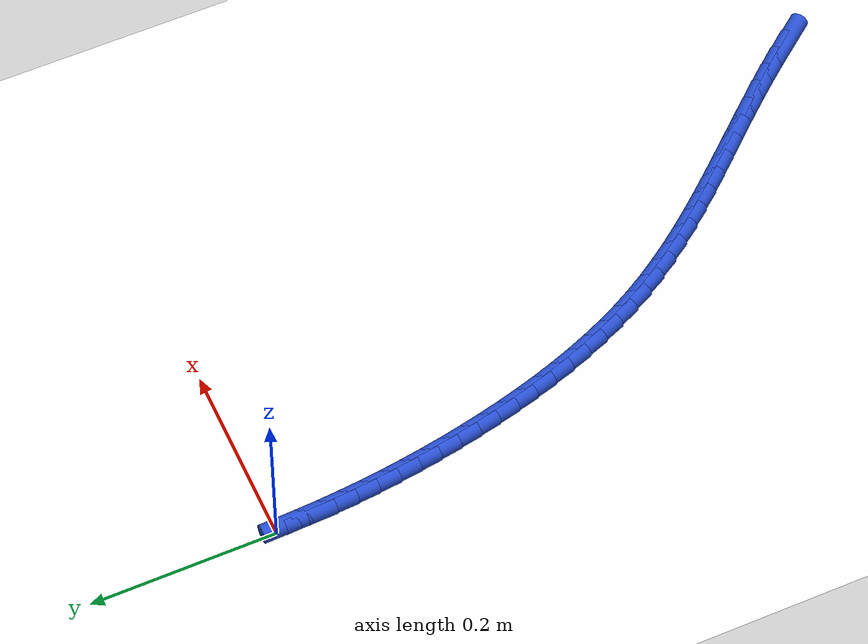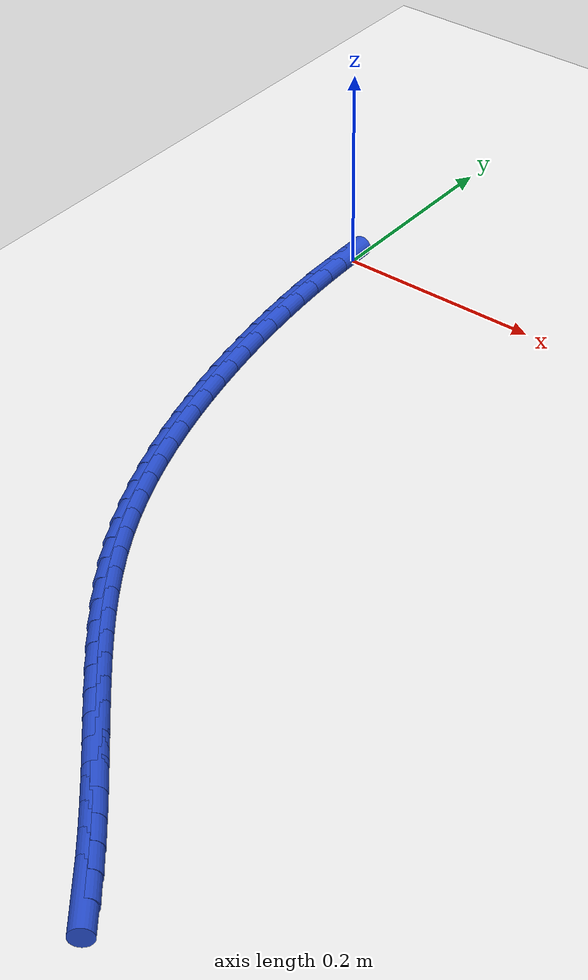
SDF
<sdf version="1.6">
 <world name="default">
  <model name="ground_plane">
   <static>1</static>
   <link name="link">
    <collision name="collision">
     <geometry><plane><normal>0 0 1</normal><size>100 100</size></plane></geometry>
     <surface><friction><ode><mu>100</mu><mu2>50</mu2></ode></friction></surface>
    </collision>
    <visual name="visual">
     <cast_shadows>0</cast_shadows>
     <geometry><plane><normal>0 0 1</normal><size>100 100</size></plane></geometry>
     <material>
      <script><uri>file://media/materials/scripts/gazebo.material</uri><name>Gazebo/WhiteGlow</name></script>
     </material>
    </visual>
   </link>
  </model>
  <model name="line">
   <link name="link_236">
    <pose>0.32914230201684863 -0.7265208255731714 0.01 0 1.57 -0.9060577357966905</pose>
    <collision name="collision">
     <geometry><cylinder><radius>0.01</radius><length>0.08</length></cylinder></geometry>
    </collision>
    <visual name="visual">
     <material>
      <script><name>Gazebo/Blue</name><uri>file://media/materials/scripts/gazebo.material</uri></script>
     </material>
     <geometry><cylinder><radius>0.01</radius><length>0.08</length></cylinder></geometry>
    </visual>
   </link>
   <link name="link_237">
    <pose>0.3139090775551079 -0.7070838949903073 0.01 0 1.57 -0.884286675162863</pose>
    <collision name="collision">
     <geometry><cylinder><radius>0.01</radius><length>0.08</length></cylinder></geometry>
    </collision>
    <visual name="visual">
     <material>
      <script><name>Gazebo/Blue</name><uri>file://media/materials/scripts/gazebo.material</uri></script>
     </material>
     <geometry><cylinder><radius>0.01</radius><length>0.08</length></cylinder></geometry>
    </visual>
   </link>
   <link name="link_238">
    <pose>0.2983105336051203 -0.6880493265683436 0.01 0 1.57 -0.8671164720490864</pose>
    <collision name="collision">
     <geometry><cylinder><radius>0.01</radius><length>0.08</length></cylinder></geometry>
    </collision>
    <visual name="visual">
     <material>
      <script><name>Gazebo/Blue</name><uri>file://media/materials/scripts/gazebo.material</uri></script>
     </material>
     <geometry><cylinder><radius>0.01</radius><length>0.08</length></cylinder></geometry>
    </visual>
   </link>
   <link name="link_239">
    <pose>0.2824369295762277 -0.6693436558121986 0.01 0 1.57 -0.8546157587797487</pose>
    <collision name="collision">
     <geometry><cylinder><radius>0.01</radius><length>0.08</length></cylinder></geometry>
    </collision>
    <visual name="visual">
     <material>
      <script><name>Gazebo/Blue</name><uri>file://media/materials/scripts/gazebo.material</uri></script>
     </material>
     <geometry><cylinder><radius>0.01</radius><length>0.08</length></cylinder></geometry>
    </visual>
   </link>
   <link name="link_240">
    <pose>0.2663787942982172 -0.6508930891737332 0.01 0 1.57 -0.8468266680399729</pose>
    <collision name="collision">
     <geometry><cylinder><radius>0.01</radius><length>0.08</length></cylinder></geometry>
    </collision>
    <visual name="visual">
     <material>
      <script><name>Gazebo/Blue</name><uri>file://media/materials/scripts/gazebo.material</uri></script>
     </material>
     <geometry><cylinder><radius>0.01</radius><length>0.08</length></cylinder></geometry>
    </visual>
   </link>
   <link name="link_241">
    <pose>0.25022665660087773 -0.6326238331048115 0.01 0 1.57 -0.8437898282730119</pose>
    <collision name="collision">
     <geometry><cylinder><radius>0.01</radius><length>0.08</length></cylinder></geometry>
    </collision>
    <visual name="visual">
     <material>
      <script><name>Gazebo/Blue</name><uri>file://media/materials/scripts/gazebo.material</uri></script>
     </material>
     <geometry><cylinder><radius>0.01</radius><length>0.08</length></cylinder></geometry>
    </visual>
   </link>
   <link name="link_242">
    <pose>0.23407104531399653 -0.614462094057295 0.01 0 1.57 -0.8455496634820914</pose>
    <collision name="collision">
     <geometry><cylinder><radius>0.01</radius><length>0.08</length></cylinder></geometry>
    </collision>
    <visual name="visual">
     <material>
      <script><name>Gazebo/Blue</name><uri>file://media/materials/scripts/gazebo.material</uri></script>
     </material>
     <geometry><cylinder><radius>0.01</radius><length>0.08</length></cylinder></geometry>
    </visual>
   </link>
   <link name="link_243">
    <pose>0.21800248926736235 -0.5963340784830474 0.01 0 1.57 -0.8521566126479406</pose>
    <collision name="collision">
     <geometry><cylinder><radius>0.01</radius><length>0.08</length></cylinder></geometry>
    </collision>
    <visual name="visual">
     <material>
      <script><name>Gazebo/Blue</name><uri>file://media/materials/scripts/gazebo.material</uri></script>
     </material>
     <geometry><cylinder><radius>0.01</radius><length>0.08</length></cylinder></geometry>
    </visual>
   </link>
   <link name="link_244">
    <pose>0.20211151729076243 -0.5781659928339303 0.01 0 1.57 -0.8636660659071318</pose>
    <collision name="collision">
     <geometry><cylinder><radius>0.01</radius><length>0.08</length></cylinder></geometry>
    </collision>
    <visual name="visual">
     <material>
      <script><name>Gazebo/Blue</name><uri>file://media/materials/scripts/gazebo.material</uri></script>
     </material>
     <geometry><cylinder><radius>0.01</radius><length>0.08</length></cylinder></geometry>
    </visual>
   </link>
   <link name="link_245">
    <pose>0.1864886582139856 -0.5598840435618074 0.01 0 1.57 -0.8801337645284976</pose>
    <collision name="collision">
     <geometry><cylinder><radius>0.01</radius><length>0.08</length></cylinder></geometry>
    </collision>
    <visual name="visual">
     <material>
      <script><name>Gazebo/Blue</name><uri>file://media/materials/scripts/gazebo.material</uri></script>
     </material>
     <geometry><cylinder><radius>0.01</radius><length>0.08</length></cylinder></geometry>
    </visual>
   </link>
   <link name="link_246">
    <pose>0.1712244408668195 -0.5414144371185408 0.01 0 1.57 -0.9016073798767136</pose>
    <collision name="collision">
     <geometry><cylinder><radius>0.01</radius><length>0.08</length></cylinder></geometry>
    </collision>
    <visual name="visual">
     <material>
      <script><name>Gazebo/Blue</name><uri>file://media/materials/scripts/gazebo.material</uri></script>
     </material>
     <geometry><cylinder><radius>0.01</radius><length>0.08</length></cylinder></geometry>
    </visual>
   </link>
   <link name="link_247">
    <pose>0.15640939407905166 -0.5226833799559926 0.01 0 1.57 -0.9281140411770259</pose>
    <collision name="collision">
     <geometry><cylinder><radius>0.01</radius><length>0.08</length></cylinder></geometry>
    </collision>
    <visual name="visual">
     <material>
      <script><name>Gazebo/Blue</name><uri>file://media/materials/scripts/gazebo.material</uri></script>
     </material>
     <geometry><cylinder><radius>0.01</radius><length>0.08</length></cylinder></geometry>
    </visual>
   </link>
   <link name="link_248">
    <pose>0.14213404668047103 -0.5036170785260264 0.01 0 1.57 -0.9596438029963519</pose>
    <collision name="collision">
     <geometry><cylinder><radius>0.01</radius><length>0.08</length></cylinder></geometry>
    </collision>
    <visual name="visual">
     <material>
      <script><name>Gazebo/Blue</name><uri>file://media/materials/scripts/gazebo.material</uri></script>
     </material>
     <geometry><cylinder><radius>0.01</radius><length>0.08</length></cylinder></geometry>
    </visual>
   </link>
   <link name="link_249">
    <pose>0.12848892750086469 -0.48414173928050375 0.01 0 1.57 -0.9961295129800785</pose>
    <collision name="collision">
     <geometry><cylinder><radius>0.01</radius><length>0.08</length></cylinder></geometry>
    </collision>
    <visual name="visual">
     <material>
      <script><name>Gazebo/Blue</name><uri>file://media/materials/scripts/gazebo.material</uri></script>
     </material>
     <geometry><cylinder><radius>0.01</radius><length>0.08</length></cylinder></geometry>
    </visual>
   </link>
   <link name="link_250">
    <pose>0.11556456537002155 -0.4641835686712887 0.01 0 1.57 -1.0374053547092623</pose>
    <collision name="collision">
     <geometry><cylinder><radius>0.01</radius><length>0.08</length></cylinder></geometry>
    </collision>
    <visual name="visual">
     <material>
      <script><name>Gazebo/Blue</name><uri>file://media/materials/scripts/gazebo.material</uri></script>
     </material>
     <geometry><cylinder><radius>0.01</radius><length>0.08</length></cylinder></geometry>
    </visual>
   </link>
   <link name="link_251">
    <pose>0.10345116501228299 -0.44366911261908465 0.01 0 1.57 -1.080909714492752</pose>
    <collision name="collision">
     <geometry><cylinder><radius>0.01</radius><length>0.08</length></cylinder></geometry>
    </collision>
    <visual name="visual">
     <material>
      <script><name>Gazebo/Blue</name><uri>file://media/materials/scripts/gazebo.material</uri></script>
     </material>
     <geometry><cylinder><radius>0.01</radius><length>0.08</length></cylinder></geometry>
    </visual>
   </link>
   <link name="link_252">
    <pose>0.09219866856314292 -0.42256708817932465 0.01 0 1.57 -1.1220003038176416</pose>
    <collision name="collision">
     <geometry><cylinder><radius>0.01</radius><length>0.08</length></cylinder></geometry>
    </collision>
    <visual name="visual">
     <material>
      <script><name>Gazebo/Blue</name><uri>file://media/materials/scripts/gazebo.material</uri></script>
     </material>
     <geometry><cylinder><radius>0.01</radius><length>0.08</length></cylinder></geometry>
    </visual>
   </link>
   <link name="link_253">
    <pose>0.08177825331195597 -0.40092871090128146 0.01 0 1.57 -1.1602307855444571</pose>
    <collision name="collision">
     <geometry><cylinder><radius>0.01</radius><length>0.08</length></cylinder></geometry>
    </collision>
    <visual name="visual">
     <material>
      <script><name>Gazebo/Blue</name><uri>file://media/materials/scripts/gazebo.material</uri></script>
     </material>
     <geometry><cylinder><radius>0.01</radius><length>0.08</length></cylinder></geometry>
    </visual>
   </link>
   <link name="link_254">
    <pose>0.07215196706285164 -0.37881475857954255 0.01 0 1.57 -1.1957119737024753</pose>
    <collision name="collision">
     <geometry><cylinder><radius>0.01</radius><length>0.08</length></cylinder></geometry>
    </collision>
    <visual name="visual">
     <material>
      <script><name>Gazebo/Blue</name><uri>file://media/materials/scripts/gazebo.material</uri></script>
     </material>
     <geometry><cylinder><radius>0.01</radius><length>0.08</length></cylinder></geometry>
    </visual>
   </link>
   <link name="link_255">
    <pose>0.06328185761995815 -0.3562860090086927 0.01 0 1.57 -1.2285684066743467</pose>
    <collision name="collision">
     <geometry><cylinder><radius>0.01</radius><length>0.08</length></cylinder></geometry>
    </collision>
    <visual name="visual">
     <material>
      <script><name>Gazebo/Blue</name><uri>file://media/materials/scripts/gazebo.material</uri></script>
     </material>
     <geometry><cylinder><radius>0.01</radius><length>0.08</length></cylinder></geometry>
    </visual>
   </link>
   <link name="link_256">
    <pose>0.05512997278740489 -0.333403239983319 0.01 0 1.57 -1.2589308652891824</pose>
    <collision name="collision">
     <geometry><cylinder><radius>0.01</radius><length>0.08</length></cylinder></geometry>
    </collision>
    <visual name="visual">
     <material>
      <script><name>Gazebo/Blue</name><uri>file://media/materials/scripts/gazebo.material</uri></script>
     </material>
     <geometry><cylinder><radius>0.01</radius><length>0.08</length></cylinder></geometry>
    </visual>
   </link>
   <link name="link_257">
    <pose>0.047658360369320425 -0.3102272292980071 0.01 0 1.57 -1.2869305471002697</pose>
    <collision name="collision">
     <geometry><cylinder><radius>0.01</radius><length>0.08</length></cylinder></geometry>
    </collision>
    <visual name="visual">
     <material>
      <script><name>Gazebo/Blue</name><uri>file://media/materials/scripts/gazebo.material</uri></script>
     </material>
     <geometry><cylinder><radius>0.01</radius><length>0.08</length></cylinder></geometry>
    </visual>
   </link>
   <link name="link_258">
    <pose>0.04082906816983338 -0.2868187547473423 0.01 0 1.57 -1.3126946550531893</pose>
    <collision name="collision">
     <geometry><cylinder><radius>0.01</radius><length>0.08</length></cylinder></geometry>
    </collision>
    <visual name="visual">
     <material>
      <script><name>Gazebo/Blue</name><uri>file://media/materials/scripts/gazebo.material</uri></script>
     </material>
     <geometry><cylinder><radius>0.01</radius><length>0.08</length></cylinder></geometry>
    </visual>
   </link>
   <link name="link_259">
    <pose>0.03460414399307302 -0.26323859412591205 0.01 0 1.57 -1.3363431283238156</pose>
    <collision name="collision">
     <geometry><cylinder><radius>0.01</radius><length>0.08</length></cylinder></geometry>
    </collision>
    <visual name="visual">
     <material>
      <script><name>Gazebo/Blue</name><uri>file://media/materials/scripts/gazebo.material</uri></script>
     </material>
     <geometry><cylinder><radius>0.01</radius><length>0.08</length></cylinder></geometry>
    </visual>
   </link>
   <link name="link_260">
    <pose>0.028945635643167794 -0.23954752522830103 0.01 0 1.57 -1.3580626612818907</pose>
    <collision name="collision">
     <geometry><cylinder><radius>0.01</radius><length>0.08</length></cylinder></geometry>
    </collision>
    <visual name="visual">
     <material>
      <script><name>Gazebo/Blue</name><uri>file://media/materials/scripts/gazebo.material</uri></script>
     </material>
     <geometry><cylinder><radius>0.01</radius><length>0.08</length></cylinder></geometry>
    </visual>
   </link>
   <link name="link_261">
    <pose>0.023816907226241586 -0.21580362904354428 0.01 0 1.57 -1.3789662914784588</pose>
    <collision name="collision">
     <geometry><cylinder><radius>0.01</radius><length>0.08</length></cylinder></geometry>
    </collision>
    <visual name="visual">
     <material>
      <script><name>Gazebo/Blue</name><uri>file://media/materials/scripts/gazebo.material</uri></script>
     </material>
     <geometry><cylinder><radius>0.01</radius><length>0.08</length></cylinder></geometry>
    </visual>
   </link>
   <link name="link_262">
    <pose>0.01919928341300398 -0.19202818941951902 0.01 0 1.57 -1.3997905510473228</pose>
    <collision name="collision">
     <geometry><cylinder><radius>0.01</radius><length>0.08</length></cylinder></geometry>
    </collision>
    <visual name="visual">
     <material>
      <script><name>Gazebo/Blue</name><uri>file://media/materials/scripts/gazebo.material</uri></script>
     </material>
     <geometry><cylinder><radius>0.01</radius><length>0.08</length></cylinder></geometry>
    </visual>
   </link>
   <link name="link_263">
    <pose>0.015087077970195538 -0.16821587847941244 0.01 0 1.57 -1.4205160919058575</pose>
    <collision name="collision">
     <geometry><cylinder><radius>0.01</radius><length>0.08</length></cylinder></geometry>
    </collision>
    <visual name="visual">
     <material>
      <script><name>Gazebo/Blue</name><uri>file://media/materials/scripts/gazebo.material</uri></script>
     </material>
     <geometry><cylinder><radius>0.01</radius><length>0.08</length></cylinder></geometry>
    </visual>
   </link>
   <link name="link_264">
    <pose>0.011474893823499938 -0.14436077592502813 0.01 0 1.57 -1.4411073195640782</pose>
    <collision name="collision">
     <geometry><cylinder><radius>0.01</radius><length>0.08</length></cylinder></geometry>
    </collision>
    <visual name="visual">
     <material>
      <script><name>Gazebo/Blue</name><uri>file://media/materials/scripts/gazebo.material</uri></script>
     </material>
     <geometry><cylinder><radius>0.01</radius><length>0.08</length></cylinder></geometry>
    </visual>
   </link>
   <link name="link_265">
    <pose>0.008357333898601361 -0.12045696145817283 0.01 0 1.57 -1.461529462703146</pose>
    <collision name="collision">
     <geometry><cylinder><radius>0.01</radius><length>0.08</length></cylinder></geometry>
    </collision>
    <visual name="visual">
     <material>
      <script><name>Gazebo/Blue</name><uri>file://media/materials/scripts/gazebo.material</uri></script>
     </material>
     <geometry><cylinder><radius>0.01</radius><length>0.08</length></cylinder></geometry>
    </visual>
   </link>
   <link name="link_266">
    <pose>0.005729001121183559 -0.09649851478065026 0.01 0 1.57 -1.4817488422000382</pose>
    <collision name="collision">
     <geometry><cylinder><radius>0.01</radius><length>0.08</length></cylinder></geometry>
    </collision>
    <visual name="visual">
     <material>
      <script><name>Gazebo/Blue</name><uri>file://media/materials/scripts/gazebo.material</uri></script>
     </material>
     <geometry><cylinder><radius>0.01</radius><length>0.08</length></cylinder></geometry>
    </visual>
   </link>
   <link name="link_267">
    <pose>0.0035844984169306295 -0.07247951559426699 0.01 0 1.57 -1.5017331187284109</pose>
    <collision name="collision">
     <geometry><cylinder><radius>0.01</radius><length>0.08</length></cylinder></geometry>
    </collision>
    <visual name="visual">
     <material>
      <script><name>Gazebo/Blue</name><uri>file://media/materials/scripts/gazebo.material</uri></script>
     </material>
     <geometry><cylinder><radius>0.01</radius><length>0.08</length></cylinder></geometry>
    </visual>
   </link>
   <link name="link_268">
    <pose>0.0019184287115264335 -0.04839404360082754 0.01 0 1.57 -1.5214515147169116</pose>
    <collision name="collision">
     <geometry><cylinder><radius>0.01</radius><length>0.08</length></cylinder></geometry>
    </collision>
    <visual name="visual">
     <material>
      <script><name>Gazebo/Blue</name><uri>file://media/materials/scripts/gazebo.material</uri></script>
     </material>
     <geometry><cylinder><radius>0.01</radius><length>0.08</length></cylinder></geometry>
    </visual>
   </link>
   <link name="link_269">
    <pose>0.0007253949306548879 -0.024236178502136326 0.01 0 1.57 -1.540875007343378</pose>
    <collision name="collision">
     <geometry><cylinder><radius>0.01</radius><length>0.08</length></cylinder></geometry>
    </collision>
    <visual name="visual">
     <material>
      <script><name>Gazebo/Blue</name><uri>file://media/materials/scripts/gazebo.material</uri></script>
     </material>
     <geometry><cylinder><radius>0.01</radius><length>0.08</length></cylinder></geometry>
    </visual>
   </link>
  </model>
 </world>
</sdf>
